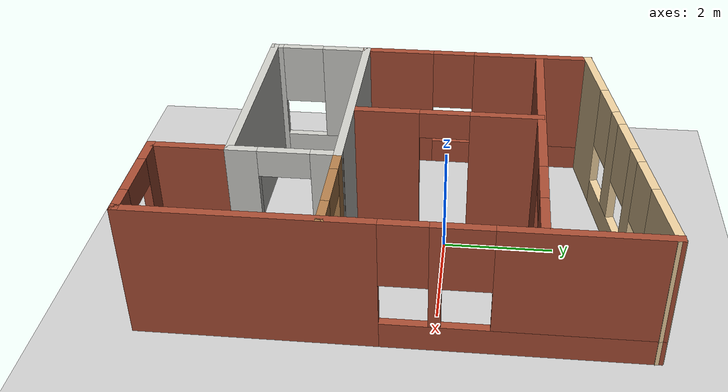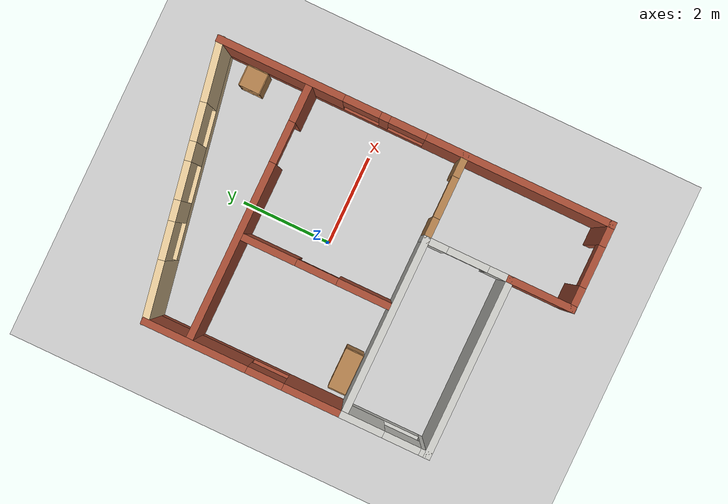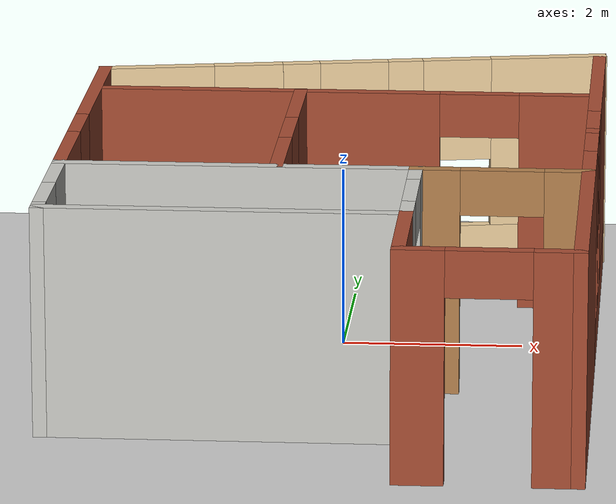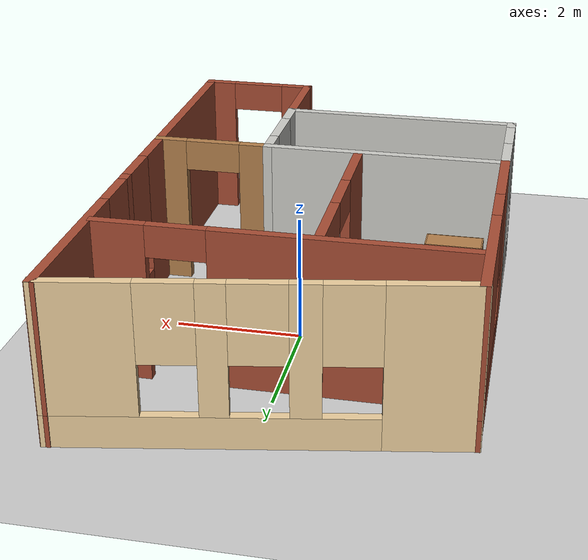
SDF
<sdf version="1.7">
 <world name="default">
  <light name="sun" type="directional">
   <pose>0 0 10 0 -0 0</pose>
   <diffuse>0.8 0.8 0.8 1</diffuse>
   <specular>0.2 0.2 0.2 1</specular>
   <attenuation>
    <range>1000</range>
    <constant>0.9</constant>
    <linear>0.01</linear>
    <quadratic>0.001</quadratic>
   </attenuation>
   <direction>-0.5 0.1 -0.9</direction>
   <spot><inner_angle>0</inner_angle><outer_angle>0</outer_angle><falloff>0</falloff></spot>
  </light>
  <model name="ground_plane">
   <static>1</static>
   <link name="link">
    <collision name="collision">
     <geometry><plane><normal>0 0 1</normal><size>100 100</size></plane></geometry>
     <surface>
      <contact><collide_bitmask>65535</collide_bitmask></contact>
      <friction><ode><mu>100</mu><mu2>50</mu2></ode></friction>
     </surface>
    </collision>
    <visual name="visual">
     <cast_shadows>0</cast_shadows>
     <geometry><plane><normal>0 0 1</normal><size>100 100</size></plane></geometry>
     <material>
      <script><uri>file://media/materials/scripts/gazebo.material</uri><name>Gazebo/Grey</name></script>
     </material>
    </visual>
   </link>
  </model>
  <gravity>0 0 -9.8</gravity>
  <magnetic_field>6e-06 2.3e-05 -4.2e-05</magnetic_field>
  <atmosphere type="adiabatic"/>
  <physics type="ode">
   <max_step_size>0.001</max_step_size>
   <real_time_factor>1</real_time_factor>
   <real_time_update_rate>1000</real_time_update_rate>
  </physics>
  <scene><ambient>0.4 0.4 0.4 1</ambient><background>0.7 0.7 0.7 1</background><shadows>1</shadows></scene>
  <audio><device>default</device></audio>
  <spherical_coordinates>
   <surface_model>EARTH_WGS84</surface_model>
   <latitude_deg>0</latitude_deg>
   <longitude_deg>0</longitude_deg>
   <elevation>0</elevation>
   <heading_deg>0</heading_deg>
  </spherical_coordinates>
  <model name="jm_room_0">
   <pose>-0.097233 -0.21493 0 0 -0 0</pose>
   <link name="Wall_16">
    <pose>1.925 -4.76526 0 0 -0 3.14159</pose>
    <visual name="Wall_16_Visual_0">
     <pose>-0.724316 0 1.25 0 -0 0</pose>
     <geometry><box><size>0.551369 0.15 2.5</size></box></geometry>
     <material>
      <script><uri>file://media/materials/scripts/gazebo.material</uri><name>Gazebo/Bricks</name></script>
      <ambient>1 1 1 1</ambient>
     </material>
     <meta><layer>0</layer></meta>
    </visual>
    <collision name="Wall_16_Collision_0">
     <geometry><box><size>0.551369 0.15 2.5</size></box></geometry>
     <pose>-0.724316 0 1.25 0 -0 0</pose>
    </collision>
    <visual name="Wall_16_Visual_1">
     <pose>0.725684 0 1.25 0 -0 0</pose>
     <geometry><box><size>0.548631 0.15 2.5</size></box></geometry>
     <material>
      <script><uri>file://media/materials/scripts/gazebo.material</uri><name>Gazebo/Bricks</name></script>
      <ambient>1 1 1 1</ambient>
     </material>
     <meta><layer>0</layer></meta>
    </visual>
    <collision name="Wall_16_Collision_1">
     <geometry><box><size>0.548631 0.15 2.5</size></box></geometry>
     <pose>0.725684 0 1.25 0 -0 0</pose>
    </collision>
    <visual name="Wall_16_Visual_2">
     <pose>0.001369 0 2.25 0 -0 0</pose>
     <geometry><box><size>0.9 0.15 0.5</size></box></geometry>
     <material>
      <script><uri>file://media/materials/scripts/gazebo.material</uri><name>Gazebo/Bricks</name></script>
      <ambient>1 1 1 1</ambient>
     </material>
     <meta><layer>0</layer></meta>
    </visual>
    <collision name="Wall_16_Collision_2">
     <geometry><box><size>0.9 0.15 0.5</size></box></geometry>
     <pose>0.001369 0 2.25 0 -0 0</pose>
    </collision>
   </link>
   <link name="Wall_17">
    <collision name="Wall_17_Collision">
     <geometry><box><size>1.5 0.15 2.5</size></box></geometry>
     <pose>0 0 1.25 0 -0 0</pose>
    </collision>
    <visual name="Wall_17_Visual">
     <pose>0 0 1.25 0 -0 0</pose>
     <geometry><box><size>1.5 0.15 2.5</size></box></geometry>
     <material>
      <script><uri>file://media/materials/scripts/gazebo.material</uri><name>Gazebo/Bricks</name></script>
      <ambient>1 1 1 1</ambient>
     </material>
     <meta><layer>0</layer></meta>
    </visual>
    <pose>1 -4.08164 0 0 -0 1.5708</pose>
   </link>
   <link name="Wall_18">
    <collision name="Wall_18_Collision">
     <geometry><box><size>4 0.15 2.5</size></box></geometry>
     <pose>0 0 1.25 0 -0 0</pose>
    </collision>
    <visual name="Wall_18_Visual">
     <pose>0 0 1.25 0 -0 0</pose>
     <geometry><box><size>4 0.15 2.5</size></box></geometry>
     <material>
      <script><uri>file://media/materials/scripts/gazebo.material</uri><name>Gazebo/CeilingTiled</name></script>
      <ambient>1 1 1 1</ambient>
     </material>
     <meta><layer>0</layer></meta>
    </visual>
    <pose>-0.925 -3.40664 0 0 -0 3.14159</pose>
   </link>
   <link name="Wall_19">
    <pose>-2.85 -2.48164 0 0 -0 1.5708</pose>
    <visual name="Wall_19_Visual_0">
     <pose>-0.875698 0 1.25 0 -0 0</pose>
     <geometry><box><size>0.248605 0.15 2.5</size></box></geometry>
     <material>
      <script><uri>file://media/materials/scripts/gazebo.material</uri><name>Gazebo/CeilingTiled</name></script>
      <ambient>0.760784 0.662745 0.627451 1</ambient>
     </material>
     <meta><layer>0</layer></meta>
    </visual>
    <collision name="Wall_19_Collision_0">
     <geometry><box><size>0.248605 0.15 2.5</size></box></geometry>
     <pose>-0.875698 0 1.25 0 -0 0</pose>
    </collision>
    <visual name="Wall_19_Visual_1">
     <pose>0.124302 0 0.25 0 -0 0</pose>
     <geometry><box><size>1.7514 0.15 0.5</size></box></geometry>
     <material>
      <script><uri>file://media/materials/scripts/gazebo.material</uri><name>Gazebo/CeilingTiled</name></script>
      <ambient>0.760784 0.662745 0.627451 1</ambient>
     </material>
     <meta><layer>0</layer></meta>
    </visual>
    <collision name="Wall_19_Collision_1">
     <geometry><box><size>1.7514 0.15 0.5</size></box></geometry>
     <pose>0.124302 0 0.25 0 -0 0</pose>
    </collision>
    <visual name="Wall_19_Visual_2">
     <pose>0.524302 0 1.5 0 -0 0</pose>
     <geometry><box><size>0.951395 0.15 2</size></box></geometry>
     <material>
      <script><uri>file://media/materials/scripts/gazebo.material</uri><name>Gazebo/CeilingTiled</name></script>
      <ambient>0.760784 0.662745 0.627451 1</ambient>
     </material>
     <meta><layer>0</layer></meta>
    </visual>
    <collision name="Wall_19_Collision_2">
     <geometry><box><size>0.951395 0.15 2</size></box></geometry>
     <pose>0.524302 0 1.5 0 -0 0</pose>
    </collision>
    <visual name="Wall_19_Visual_3">
     <pose>-0.351395 0 1.9 0 -0 0</pose>
     <geometry><box><size>0.8 0.15 1.2</size></box></geometry>
     <material>
      <script><uri>file://media/materials/scripts/gazebo.material</uri><name>Gazebo/CeilingTiled</name></script>
      <ambient>0.760784 0.662745 0.627451 1</ambient>
     </material>
     <meta><layer>0</layer></meta>
    </visual>
    <collision name="Wall_19_Collision_3">
     <geometry><box><size>0.8 0.15 1.2</size></box></geometry>
     <pose>-0.351395 0 1.9 0 -0 0</pose>
    </collision>
   </link>
   <link name="Wall_22">
    <pose>-2.85 0.618361 0 0 -0 1.5708</pose>
    <visual name="Wall_22_Visual_0">
     <pose>-1.54705 0 1.25 0 -0 0</pose>
     <geometry><box><size>1.40591 0.15 2.5</size></box></geometry>
     <material>
      <script><uri>file://media/materials/scripts/gazebo.material</uri><name>Gazebo/Bricks</name></script>
      <ambient>0.760784 0.662745 0.627451 1</ambient>
     </material>
     <meta><layer>0</layer></meta>
    </visual>
    <collision name="Wall_22_Collision_0">
     <geometry><box><size>1.40591 0.15 2.5</size></box></geometry>
     <pose>-1.54705 0 1.25 0 -0 0</pose>
    </collision>
    <visual name="Wall_22_Visual_1">
     <pose>0.702955 0 0.25 0 -0 0</pose>
     <geometry><box><size>3.09409 0.15 0.5</size></box></geometry>
     <material>
      <script><uri>file://media/materials/scripts/gazebo.material</uri><name>Gazebo/Bricks</name></script>
      <ambient>0.760784 0.662745 0.627451 1</ambient>
     </material>
     <meta><layer>0</layer></meta>
    </visual>
    <collision name="Wall_22_Collision_1">
     <geometry><box><size>3.09409 0.15 0.5</size></box></geometry>
     <pose>0.702955 0 0.25 0 -0 0</pose>
    </collision>
    <visual name="Wall_22_Visual_2">
     <pose>1.10295 0 1.5 0 -0 0</pose>
     <geometry><box><size>2.29409 0.15 2</size></box></geometry>
     <material>
      <script><uri>file://media/materials/scripts/gazebo.material</uri><name>Gazebo/Bricks</name></script>
      <ambient>0.760784 0.662745 0.627451 1</ambient>
     </material>
     <meta><layer>0</layer></meta>
    </visual>
    <collision name="Wall_22_Collision_2">
     <geometry><box><size>2.29409 0.15 2</size></box></geometry>
     <pose>1.10295 0 1.5 0 -0 0</pose>
    </collision>
    <visual name="Wall_22_Visual_3">
     <pose>-0.444091 0 1.9 0 -0 0</pose>
     <geometry><box><size>0.8 0.15 1.2</size></box></geometry>
     <material>
      <script><uri>file://media/materials/scripts/gazebo.material</uri><name>Gazebo/Bricks</name></script>
      <ambient>0.760784 0.662745 0.627451 1</ambient>
     </material>
     <meta><layer>0</layer></meta>
    </visual>
    <collision name="Wall_22_Collision_3">
     <geometry><box><size>0.8 0.15 1.2</size></box></geometry>
     <pose>-0.444091 0 1.9 0 -0 0</pose>
    </collision>
   </link>
   <link name="Wall_27">
    <pose>2.85 -0.465264 0 0 -0 1.5708</pose>
    <visual name="Wall_27_Visual_0">
     <pose>-2.29886 0 1.25 0 -0 0</pose>
     <geometry><box><size>4.15229 0.15 2.5</size></box></geometry>
     <material>
      <script><uri>file://media/materials/scripts/gazebo.material</uri><name>Gazebo/Bricks</name></script>
      <ambient>1 1 1 1</ambient>
     </material>
     <meta><layer>0</layer></meta>
    </visual>
    <collision name="Wall_27_Collision_0">
     <geometry><box><size>4.15229 0.15 2.5</size></box></geometry>
     <pose>-2.29886 0 1.25 0 -0 0</pose>
    </collision>
    <visual name="Wall_27_Visual_1">
     <pose>2.07614 0 0.25 0 -0 0</pose>
     <geometry><box><size>4.59771 0.15 0.5</size></box></geometry>
     <material>
      <script><uri>file://media/materials/scripts/gazebo.material</uri><name>Gazebo/Bricks</name></script>
      <ambient>1 1 1 1</ambient>
     </material>
     <meta><layer>0</layer></meta>
    </visual>
    <collision name="Wall_27_Collision_1">
     <geometry><box><size>4.59771 0.15 0.5</size></box></geometry>
     <pose>2.07614 0 0.25 0 -0 0</pose>
    </collision>
    <visual name="Wall_27_Visual_2">
     <pose>0.679787 0 1.5 0 -0 0</pose>
     <geometry><box><size>0.205 0.15 2</size></box></geometry>
     <material>
      <script><uri>file://media/materials/scripts/gazebo.material</uri><name>Gazebo/Bricks</name></script>
      <ambient>1 1 1 1</ambient>
     </material>
     <meta><layer>0</layer></meta>
    </visual>
    <collision name="Wall_27_Collision_2">
     <geometry><box><size>0.205 0.15 2</size></box></geometry>
     <pose>0.679787 0 1.5 0 -0 0</pose>
    </collision>
    <visual name="Wall_27_Visual_3">
     <pose>2.97864 0 1.5 0 -0 0</pose>
     <geometry><box><size>2.79271 0.15 2</size></box></geometry>
     <material>
      <script><uri>file://media/materials/scripts/gazebo.material</uri><name>Gazebo/Bricks</name></script>
      <ambient>1 1 1 1</ambient>
     </material>
     <meta><layer>0</layer></meta>
    </visual>
    <collision name="Wall_27_Collision_3">
     <geometry><box><size>2.79271 0.15 2</size></box></geometry>
     <pose>2.97864 0 1.5 0 -0 0</pose>
    </collision>
    <visual name="Wall_27_Visual_4">
     <pose>0.177287 0 1.9 0 -0 0</pose>
     <geometry><box><size>0.8 0.15 1.2</size></box></geometry>
     <material>
      <script><uri>file://media/materials/scripts/gazebo.material</uri><name>Gazebo/Bricks</name></script>
      <ambient>1 1 1 1</ambient>
     </material>
     <meta><layer>0</layer></meta>
    </visual>
    <collision name="Wall_27_Collision_4">
     <geometry><box><size>0.8 0.15 1.2</size></box></geometry>
     <pose>0.177287 0 1.9 0 -0 0</pose>
    </collision>
    <visual name="Wall_27_Visual_5">
     <pose>1.18229 0 1.9 0 -0 0</pose>
     <geometry><box><size>0.8 0.15 1.2</size></box></geometry>
     <material>
      <script><uri>file://media/materials/scripts/gazebo.material</uri><name>Gazebo/Bricks</name></script>
      <ambient>1 1 1 1</ambient>
     </material>
     <meta><layer>0</layer></meta>
    </visual>
    <collision name="Wall_27_Collision_5">
     <geometry><box><size>0.8 0.15 1.2</size></box></geometry>
     <pose>1.18229 0 1.9 0 -0 0</pose>
    </collision>
   </link>
   <link name="Wall_56">
    <pose>1 -2.48164 0 0 -0 1.5708</pose>
    <visual name="Wall_56_Visual_0">
     <pose>-0.722289 0 1.25 0 -0 0</pose>
     <geometry><box><size>0.555421 0.15 2.5</size></box></geometry>
     <material>
      <script><uri>file://media/materials/scripts/gazebo.material</uri><name>Gazebo/CeilingTiled</name></script>
      <ambient>1 1 1 1</ambient>
     </material>
     <meta><layer>0</layer></meta>
    </visual>
    <collision name="Wall_56_Collision_0">
     <geometry><box><size>0.555421 0.15 2.5</size></box></geometry>
     <pose>-0.722289 0 1.25 0 -0 0</pose>
    </collision>
    <visual name="Wall_56_Visual_1">
     <pose>0.727711 0 1.25 0 -0 0</pose>
     <geometry><box><size>0.544579 0.15 2.5</size></box></geometry>
     <material>
      <script><uri>file://media/materials/scripts/gazebo.material</uri><name>Gazebo/CeilingTiled</name></script>
      <ambient>1 1 1 1</ambient>
     </material>
     <meta><layer>0</layer></meta>
    </visual>
    <collision name="Wall_56_Collision_1">
     <geometry><box><size>0.544579 0.15 2.5</size></box></geometry>
     <pose>0.727711 0 1.25 0 -0 0</pose>
    </collision>
    <visual name="Wall_56_Visual_2">
     <pose>0.005421 0 2.25 0 -0 0</pose>
     <geometry><box><size>0.9 0.15 0.5</size></box></geometry>
     <material>
      <script><uri>file://media/materials/scripts/gazebo.material</uri><name>Gazebo/CeilingTiled</name></script>
      <ambient>1 1 1 1</ambient>
     </material>
     <meta><layer>0</layer></meta>
    </visual>
    <collision name="Wall_56_Collision_2">
     <geometry><box><size>0.9 0.15 0.5</size></box></geometry>
     <pose>0.005421 0 2.25 0 -0 0</pose>
    </collision>
   </link>
   <link name="Wall_57">
    <collision name="Wall_57_Collision">
     <geometry><box><size>4 0.15 2.5</size></box></geometry>
     <pose>0 0 1.25 0 -0 0</pose>
    </collision>
    <visual name="Wall_57_Visual">
     <pose>0 0 1.25 0 -0 0</pose>
     <geometry><box><size>4 0.15 2.5</size></box></geometry>
     <material>
      <script><uri>file://media/materials/scripts/gazebo.material</uri><name>Gazebo/CeilingTiled</name></script>
      <ambient>1 1 1 1</ambient>
     </material>
     <meta><layer>0</layer></meta>
    </visual>
    <pose>-0.925 -1.55664 0 0 -0 3.14159</pose>
   </link>
   <link name="Wall_59">
    <pose>1.925 -1.55664 0 0 -0 0</pose>
    <visual name="Wall_59_Visual_0">
     <pose>-0.723785 0 1.25 0 -0 0</pose>
     <geometry><box><size>0.552429 0.15 2.5</size></box></geometry>
     <material>
      <script><uri>file://media/materials/scripts/gazebo.material</uri><name>Gazebo/Wood</name></script>
      <ambient>1 1 1 1</ambient>
     </material>
     <meta><layer>0</layer></meta>
    </visual>
    <collision name="Wall_59_Collision_0">
     <geometry><box><size>0.552429 0.15 2.5</size></box></geometry>
     <pose>-0.723785 0 1.25 0 -0 0</pose>
    </collision>
    <visual name="Wall_59_Visual_1">
     <pose>0.726215 0 1.25 0 -0 0</pose>
     <geometry><box><size>0.547571 0.15 2.5</size></box></geometry>
     <material>
      <script><uri>file://media/materials/scripts/gazebo.material</uri><name>Gazebo/Wood</name></script>
      <ambient>1 1 1 1</ambient>
     </material>
     <meta><layer>0</layer></meta>
    </visual>
    <collision name="Wall_59_Collision_1">
     <geometry><box><size>0.547571 0.15 2.5</size></box></geometry>
     <pose>0.726215 0 1.25 0 -0 0</pose>
    </collision>
    <visual name="Wall_59_Visual_2">
     <pose>0.002429 0 2.25 0 -0 0</pose>
     <geometry><box><size>0.9 0.15 0.5</size></box></geometry>
     <material>
      <script><uri>file://media/materials/scripts/gazebo.material</uri><name>Gazebo/Wood</name></script>
      <ambient>1 1 1 1</ambient>
     </material>
     <meta><layer>0</layer></meta>
    </visual>
    <collision name="Wall_59_Collision_2">
     <geometry><box><size>0.9 0.15 0.5</size></box></geometry>
     <pose>0.002429 0 2.25 0 -0 0</pose>
    </collision>
   </link>
   <link name="Wall_63">
    <pose>-0.044337 1.85072 0 0 -0 0</pose>
    <visual name="Wall_63_Visual_0">
     <pose>-0.873919 0 1.25 0 -0 0</pose>
     <geometry><box><size>4.00216 0.15 2.5</size></box></geometry>
     <material>
      <script><uri>file://media/materials/scripts/gazebo.material</uri><name>Gazebo/Bricks</name></script>
      <ambient>1 1 1 1</ambient>
     </material>
     <meta><layer>0</layer></meta>
    </visual>
    <collision name="Wall_63_Collision_0">
     <geometry><box><size>4.00216 0.15 2.5</size></box></geometry>
     <pose>-0.873919 0 1.25 0 -0 0</pose>
    </collision>
    <visual name="Wall_63_Visual_1">
     <pose>2.45108 0 1.25 0 -0 0</pose>
     <geometry><box><size>0.847838 0.15 2.5</size></box></geometry>
     <material>
      <script><uri>file://media/materials/scripts/gazebo.material</uri><name>Gazebo/Bricks</name></script>
      <ambient>1 1 1 1</ambient>
     </material>
     <meta><layer>0</layer></meta>
    </visual>
    <collision name="Wall_63_Collision_1">
     <geometry><box><size>0.847838 0.15 2.5</size></box></geometry>
     <pose>2.45108 0 1.25 0 -0 0</pose>
    </collision>
    <visual name="Wall_63_Visual_2">
     <pose>1.57716 0 2.25 0 -0 0</pose>
     <geometry><box><size>0.9 0.15 0.5</size></box></geometry>
     <material>
      <script><uri>file://media/materials/scripts/gazebo.material</uri><name>Gazebo/Bricks</name></script>
      <ambient>1 1 1 1</ambient>
     </material>
     <meta><layer>0</layer></meta>
    </visual>
    <collision name="Wall_63_Collision_2">
     <geometry><box><size>0.9 0.15 0.5</size></box></geometry>
     <pose>1.57716 0 2.25 0 -0 0</pose>
    </collision>
   </link>
   <link name="Wall_67">
    <pose>0 3.31405 0 0 -0 0.180704</pose>
    <visual name="Wall_67_Visual_0">
     <pose>-2.30191 0 1.25 0 -0 0</pose>
     <geometry><box><size>1.34053 0.15 2.5</size></box></geometry>
     <material>
      <script><uri>file://media/materials/scripts/gazebo.material</uri><name>Gazebo/Grey</name></script>
      <ambient>0.921569 0.807843 0.615686 1</ambient>
     </material>
     <meta><layer>0</layer></meta>
    </visual>
    <collision name="Wall_67_Collision_0">
     <geometry><box><size>1.34053 0.15 2.5</size></box></geometry>
     <pose>-2.30191 0 1.25 0 -0 0</pose>
    </collision>
    <visual name="Wall_67_Visual_1">
     <pose>0.670264 0 0.25 0 -0 0</pose>
     <geometry><box><size>4.60382 0.15 0.5</size></box></geometry>
     <material>
      <script><uri>file://media/materials/scripts/gazebo.material</uri><name>Gazebo/Grey</name></script>
      <ambient>0.921569 0.807843 0.615686 1</ambient>
     </material>
     <meta><layer>0</layer></meta>
    </visual>
    <collision name="Wall_67_Collision_1">
     <geometry><box><size>4.60382 0.15 0.5</size></box></geometry>
     <pose>0.670264 0 0.25 0 -0 0</pose>
    </collision>
    <visual name="Wall_67_Visual_2">
     <pose>-0.614474 0 1.5 0 -0 0</pose>
     <geometry><box><size>0.434342 0.15 2</size></box></geometry>
     <material>
      <script><uri>file://media/materials/scripts/gazebo.material</uri><name>Gazebo/Grey</name></script>
      <ambient>0.921569 0.807843 0.615686 1</ambient>
     </material>
     <meta><layer>0</layer></meta>
    </visual>
    <collision name="Wall_67_Collision_2">
     <geometry><box><size>0.434342 0.15 2</size></box></geometry>
     <pose>-0.614474 0 1.5 0 -0 0</pose>
    </collision>
    <visual name="Wall_67_Visual_3">
     <pose>0.605999 0 1.5 0 -0 0</pose>
     <geometry><box><size>0.406604 0.15 2</size></box></geometry>
     <material>
      <script><uri>file://media/materials/scripts/gazebo.material</uri><name>Gazebo/Grey</name></script>
      <ambient>0.921569 0.807843 0.615686 1</ambient>
     </material>
     <meta><layer>0</layer></meta>
    </visual>
    <collision name="Wall_67_Collision_3">
     <geometry><box><size>0.406604 0.15 2</size></box></geometry>
     <pose>0.605999 0 1.5 0 -0 0</pose>
    </collision>
    <visual name="Wall_67_Visual_4">
     <pose>2.29074 0 1.5 0 -0 0</pose>
     <geometry><box><size>1.36287 0.15 2</size></box></geometry>
     <material>
      <script><uri>file://media/materials/scripts/gazebo.material</uri><name>Gazebo/Grey</name></script>
      <ambient>0.921569 0.807843 0.615686 1</ambient>
     </material>
     <meta><layer>0</layer></meta>
    </visual>
    <collision name="Wall_67_Collision_4">
     <geometry><box><size>1.36287 0.15 2</size></box></geometry>
     <pose>2.29074 0 1.5 0 -0 0</pose>
    </collision>
    <visual name="Wall_67_Visual_5">
     <pose>-1.23165 0 1.9 0 -0 0</pose>
     <geometry><box><size>0.8 0.15 1.2</size></box></geometry>
     <material>
      <script><uri>file://media/materials/scripts/gazebo.material</uri><name>Gazebo/Grey</name></script>
      <ambient>0.921569 0.807843 0.615686 1</ambient>
     </material>
     <meta><layer>0</layer></meta>
    </visual>
    <collision name="Wall_67_Collision_5">
     <geometry><box><size>0.8 0.15 1.2</size></box></geometry>
     <pose>-1.23165 0 1.9 0 -0 0</pose>
    </collision>
    <visual name="Wall_67_Visual_6">
     <pose>0.002697 0 1.9 0 -0 0</pose>
     <geometry><box><size>0.8 0.15 1.2</size></box></geometry>
     <material>
      <script><uri>file://media/materials/scripts/gazebo.material</uri><name>Gazebo/Grey</name></script>
      <ambient>0.921569 0.807843 0.615686 1</ambient>
     </material>
     <meta><layer>0</layer></meta>
    </visual>
    <collision name="Wall_67_Collision_6">
     <geometry><box><size>0.8 0.15 1.2</size></box></geometry>
     <pose>0.002697 0 1.9 0 -0 0</pose>
    </collision>
    <visual name="Wall_67_Visual_7">
     <pose>1.2093 0 1.9 0 -0 0</pose>
     <geometry><box><size>0.8 0.15 1.2</size></box></geometry>
     <material>
      <script><uri>file://media/materials/scripts/gazebo.material</uri><name>Gazebo/Grey</name></script>
      <ambient>0.921569 0.807843 0.615686 1</ambient>
     </material>
     <meta><layer>0</layer></meta>
    </visual>
    <collision name="Wall_67_Collision_7">
     <geometry><box><size>0.8 0.15 1.2</size></box></geometry>
     <pose>1.2093 0 1.9 0 -0 0</pose>
    </collision>
   </link>
   <link name="Wall_71">
    <pose>-0.50516 0.152072 0 0 -0 -1.5708</pose>
    <visual name="Wall_71_Visual_0">
     <pose>-1.09273 0 1.25 0 -0 0</pose>
     <geometry><box><size>1.31453 0.15 2.5</size></box></geometry>
     <material>
      <script><uri>file://media/materials/scripts/gazebo.material</uri><name>Gazebo/Bricks</name></script>
      <ambient>1 1 1 1</ambient>
     </material>
     <meta><layer>0</layer></meta>
    </visual>
    <collision name="Wall_71_Collision_0">
     <geometry><box><size>1.31453 0.15 2.5</size></box></geometry>
     <pose>-1.09273 0 1.25 0 -0 0</pose>
    </collision>
    <visual name="Wall_71_Visual_1">
     <pose>1.10727 0 1.25 0 -0 0</pose>
     <geometry><box><size>1.28547 0.15 2.5</size></box></geometry>
     <material>
      <script><uri>file://media/materials/scripts/gazebo.material</uri><name>Gazebo/Bricks</name></script>
      <ambient>1 1 1 1</ambient>
     </material>
     <meta><layer>0</layer></meta>
    </visual>
    <collision name="Wall_71_Collision_1">
     <geometry><box><size>1.28547 0.15 2.5</size></box></geometry>
     <pose>1.10727 0 1.25 0 -0 0</pose>
    </collision>
    <visual name="Wall_71_Visual_2">
     <pose>0.014531 0 2.25 0 -0 0</pose>
     <geometry><box><size>0.9 0.15 0.5</size></box></geometry>
     <material>
      <script><uri>file://media/materials/scripts/gazebo.material</uri><name>Gazebo/Bricks</name></script>
      <ambient>1 1 1 1</ambient>
     </material>
     <meta><layer>0</layer></meta>
    </visual>
    <collision name="Wall_71_Collision_2">
     <geometry><box><size>0.9 0.15 0.5</size></box></geometry>
     <pose>0.014531 0 2.25 0 -0 0</pose>
    </collision>
   </link>
   <static>1</static>
  </model>
  <model name="bookshelf">
   <static>1</static>
   <link name="link">
    <inertial><mass>1</mass></inertial>
    <collision name="back">
     <pose>0 0.005 0.6 0 -0 0</pose>
     <geometry><box><size>0.9 0.01 1.2</size></box></geometry>
    </collision>
    <visual name="visual1">
     <pose>0 0.005 0.6 0 -0 0</pose>
     <geometry><box><size>0.9 0.01 1.2</size></box></geometry>
     <material>
      <script><uri>file://media/materials/scripts/gazebo.material</uri><name>Gazebo/Wood</name></script>
     </material>
    </visual>
    <collision name="left_side">
     <pose>0.45 -0.195 0.6 0 -0 0</pose>
     <geometry><box><size>0.02 0.4 1.2</size></box></geometry>
    </collision>
    <visual name="visual2">
     <pose>0.45 -0.195 0.6 0 -0 0</pose>
     <geometry><box><size>0.02 0.4 1.2</size></box></geometry>
     <material>
      <script><uri>file://media/materials/scripts/gazebo.material</uri><name>Gazebo/Wood</name></script>
     </material>
    </visual>
    <collision name="right_side">
     <pose>-0.45 -0.195 0.6 0 -0 0</pose>
     <geometry><box><size>0.02 0.4 1.2</size></box></geometry>
    </collision>
    <visual name="visual3">
     <pose>-0.45 -0.195 0.6 0 -0 0</pose>
     <geometry><box><size>0.02 0.4 1.2</size></box></geometry>
     <material>
      <script><uri>file://media/materials/scripts/gazebo.material</uri><name>Gazebo/Wood</name></script>
     </material>
    </visual>
    <collision name="bottom">
     <pose>0 -0.195 0.03 0 -0 0</pose>
     <geometry><box><size>0.88 0.4 0.06</size></box></geometry>
    </collision>
    <visual name="visual4">
     <pose>0 -0.195 0.03 0 -0 0</pose>
     <geometry><box><size>0.88 0.4 0.06</size></box></geometry>
     <material>
      <script><uri>file://media/materials/scripts/gazebo.material</uri><name>Gazebo/Wood</name></script>
     </material>
    </visual>
    <collision name="top">
     <pose>0 -0.195 1.19 0 -0 0</pose>
     <geometry><box><size>0.88 0.4 0.02</size></box></geometry>
    </collision>
    <visual name="visual5">
     <pose>0 -0.195 1.19 0 -0 0</pose>
     <geometry><box><size>0.88 0.4 0.02</size></box></geometry>
     <material>
      <script><uri>file://media/materials/scripts/gazebo.material</uri><name>Gazebo/Wood</name></script>
     </material>
    </visual>
    <collision name="low_shelf">
     <pose>0 -0.195 0.43 0 -0 0</pose>
     <geometry><box><size>0.88 0.4 0.02</size></box></geometry>
    </collision>
    <visual name="visual6">
     <pose>0 -0.195 0.43 0 -0 0</pose>
     <geometry><box><size>0.88 0.4 0.02</size></box></geometry>
     <material>
      <script><uri>file://media/materials/scripts/gazebo.material</uri><name>Gazebo/Wood</name></script>
     </material>
    </visual>
    <collision name="high_shelf">
     <pose>0 -0.195 0.8 0 -0 0</pose>
     <geometry><box><size>0.88 0.4 0.02</size></box></geometry>
    </collision>
    <visual name="visual7">
     <pose>0 -0.195 0.8 0 -0 0</pose>
     <geometry><box><size>0.88 0.4 0.02</size></box></geometry>
     <material>
      <script><uri>file://media/materials/scripts/gazebo.material</uri><name>Gazebo/Wood</name></script>
     </material>
    </visual>
   </link>
   <pose>-2.23165 -1.66386 0 0 0 -3.14159</pose>
  </model>
  <model name="cabinet">
   <static>1</static>
   <link name="cabinet_bottom_plate">
    <inertial>
     <pose>0 0 -1 0 -0 0</pose>
     <inertia><ixx>2.05</ixx><ixy>0</ixy><ixz>0</ixz><iyy>2.05</iyy><iyz>0</iyz><izz>2.05</izz></inertia>
     <mass>25</mass>
    </inertial>
    <collision name="cabinet_bottom_plate_geom">
     <pose>0 0 0.01 0 -0 0</pose>
     <geometry><box><size>0.45 0.45 0.02</size></box></geometry>
    </collision>
    <visual name="cabinet_bottom_plate_geom_visual">
     <pose>0 0 0.01 0 -0 0</pose>
     <geometry><box><size>0.45 0.45 0.02</size></box></geometry>
     <material>
      <script><uri>file://media/materials/scripts/gazebo.material</uri><name>Gazebo/Wood</name></script>
     </material>
    </visual>
    <collision name="cabinet_bottom_plate_geom_cabinet_back_plate">
     <pose>0.235 0 0.51 0 -0 0</pose>
     <geometry><box><size>0.02 0.45 1.02</size></box></geometry>
    </collision>
    <visual name="cabinet_bottom_plate_geom_cabinet_back_plate_visual">
     <pose>0.235 0 0.51 0 -0 0</pose>
     <geometry><box><size>0.02 0.45 1.02</size></box></geometry>
     <material>
      <script><uri>file://media/materials/scripts/gazebo.material</uri><name>Gazebo/Wood</name></script>
     </material>
    </visual>
    <collision name="cabinet_bottom_plate_geom_cabinet_left_plate">
     <pose>0 0.235 0.51 0 -0 0</pose>
     <geometry><box><size>0.45 0.02 1.02</size></box></geometry>
    </collision>
    <visual name="cabinet_bottom_plate_geom_cabinet_left_plate_visual">
     <pose>0 0.235 0.51 0 -0 0</pose>
     <geometry><box><size>0.45 0.02 1.02</size></box></geometry>
     <material>
      <script><uri>file://media/materials/scripts/gazebo.material</uri><name>Gazebo/Wood</name></script>
     </material>
    </visual>
    <collision name="cabinet_bottom_plate_geom_cabinet_middle_plate">
     <pose>0 0 0.51 0 -0 0</pose>
     <geometry><box><size>0.45 0.45 0.02</size></box></geometry>
    </collision>
    <visual name="cabinet_bottom_plate_geom_cabinet_middle_plate_visual">
     <pose>0 0 0.51 0 -0 0</pose>
     <geometry><box><size>0.45 0.45 0.02</size></box></geometry>
     <material>
      <script><uri>file://media/materials/scripts/gazebo.material</uri><name>Gazebo/Wood</name></script>
     </material>
    </visual>
    <collision name="cabinet_bottom_plate_geom_cabinet_right_plate">
     <pose>0 -0.235 0.51 0 -0 0</pose>
     <geometry><box><size>0.45 0.02 1.02</size></box></geometry>
    </collision>
    <visual name="cabinet_bottom_plate_geom_cabinet_right_plate_visual">
     <pose>0 -0.235 0.51 0 -0 0</pose>
     <geometry><box><size>0.45 0.02 1.02</size></box></geometry>
     <material>
      <script><uri>file://media/materials/scripts/gazebo.material</uri><name>Gazebo/Wood</name></script>
     </material>
    </visual>
    <collision name="cabinet_bottom_plate_geom_cabinet_top_plate">
     <pose>0 0 1.01 0 -0 0</pose>
     <geometry><box><size>0.45 0.45 0.02</size></box></geometry>
    </collision>
    <visual name="cabinet_bottom_plate_geom_cabinet_top_plate_visual">
     <pose>0 0 1.01 0 -0 0</pose>
     <geometry><box><size>0.45 0.45 0.02</size></box></geometry>
     <material>
      <script><uri>file://media/materials/scripts/gazebo.material</uri><name>Gazebo/Wood</name></script>
     </material>
    </visual>
   </link>
   <pose>2.39957 2.83526 0 0 -0 0</pose>
  </model>
 </world>
</sdf>
